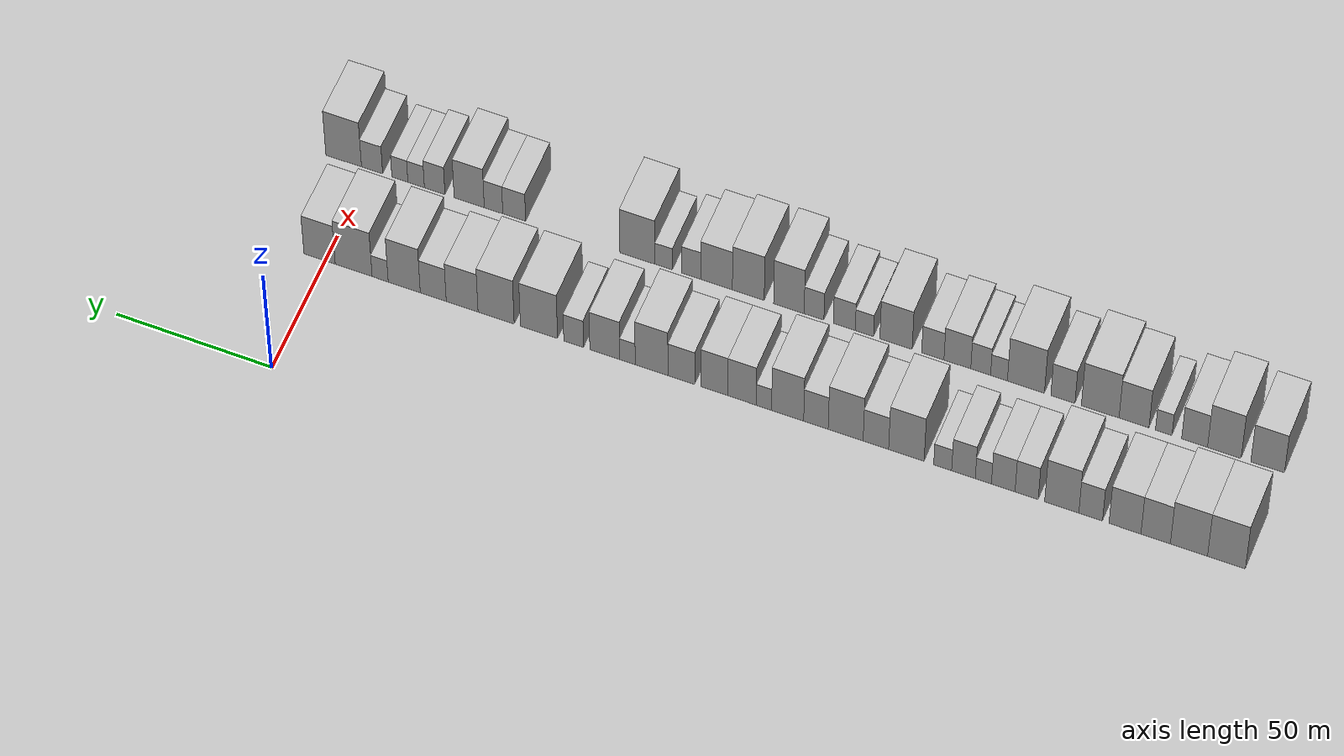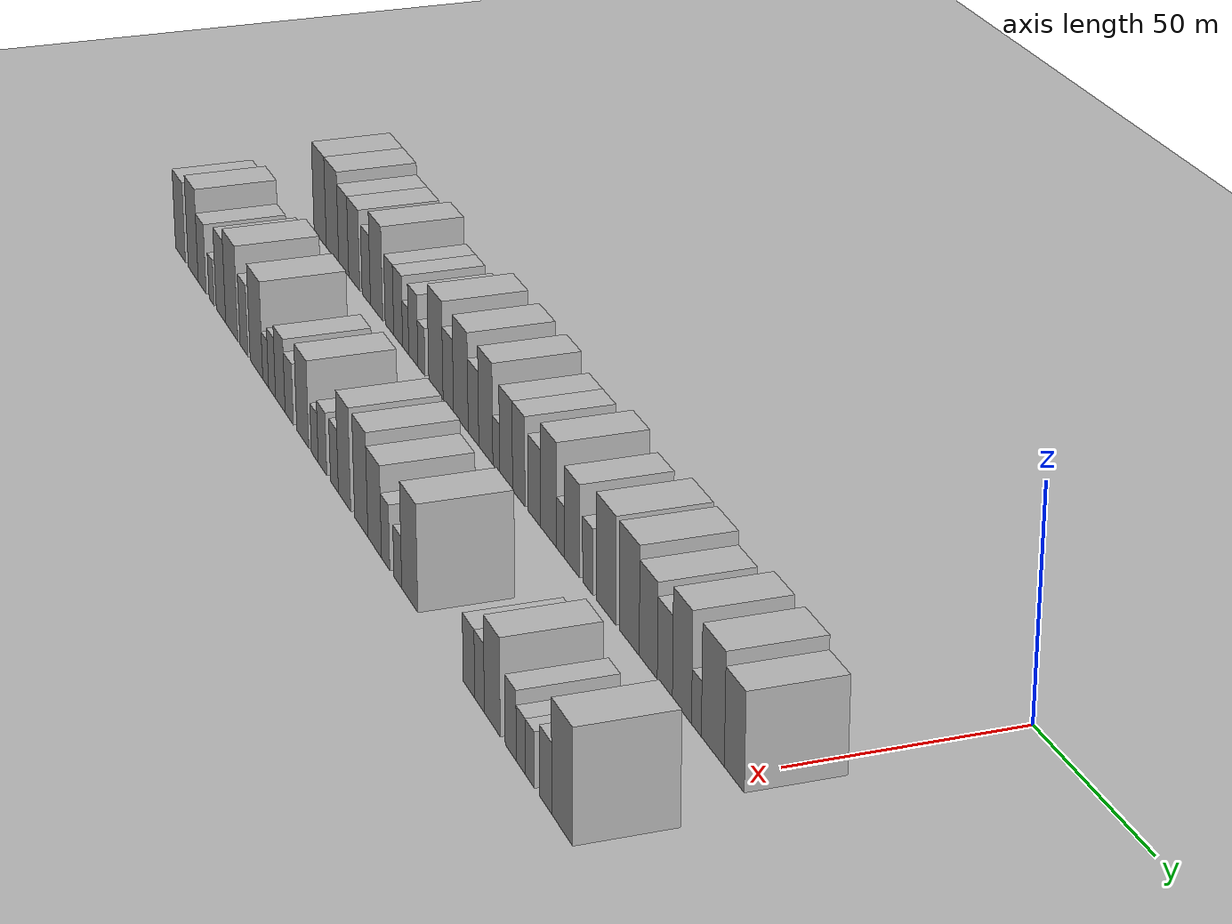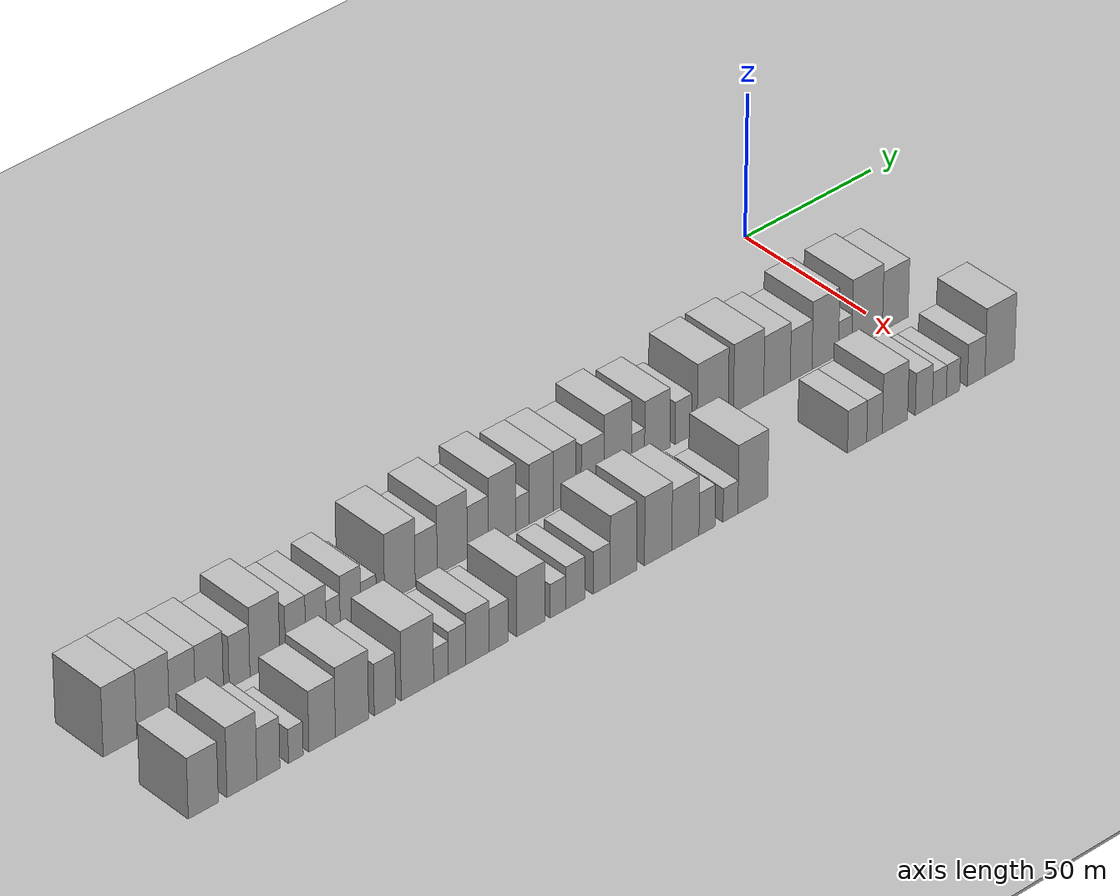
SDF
<sdf version="1.6">
 <world name="default">
  <include><name>ground_plane_1</name><uri>model://HANNAS_ground_plane</uri></include>
  <include>
   <name>ground_plane_2</name>
   <uri>model://HANNAS_ground_plane</uri>
   <pose>100 0 0  0 0 0</pose>
  </include>
  <model name="building_1">
   <static>1</static>
   <pose>50.0000 -284.1968 0 0.000000 0.000000 0.000000</pose>
   <link name="link">
    <pose>0 0 12.00 0 0 0</pose>
    <collision name="collision"><geometry><box><size>20.0000 11.6064 24.0000</size></box></geometry></collision>
    <visual name="visual">
     <cast_shadows>0</cast_shadows>
     <geometry><box><size>20.0000 11.6064 24.0000</size></box></geometry>
     <material>
      <script>
       <uri>model://HANNAS_wall/materials/scripts</uri>
       <uri>model://HANNAS_wall/materials/textures</uri>
       <name>vrc/HANNAS_wall</name>
      </script>
     </material>
    </visual>
   </link>
  </model>
  <model name="building_2">
   <static>1</static>
   <pose>50.0000 -272.6836 0 0.000000 0.000000 0.000000</pose>
   <link name="link">
    <pose>0 0 12.00 0 0 0</pose>
    <collision name="collision"><geometry><box><size>20.0000 11.4199 24.0000</size></box></geometry></collision>
    <visual name="visual">
     <cast_shadows>0</cast_shadows>
     <geometry><box><size>20.0000 11.4199 24.0000</size></box></geometry>
     <material>
      <script>
       <uri>model://HANNAS_wall/materials/scripts</uri>
       <uri>model://HANNAS_wall/materials/textures</uri>
       <name>vrc/HANNAS_wall</name>
      </script>
     </material>
    </visual>
   </link>
  </model>
  <model name="building_3">
   <static>1</static>
   <pose>50.0000 -262.4343 0 0.000000 0.000000 0.000000</pose>
   <link name="link">
    <pose>0 0 10.50 0 0 0</pose>
    <collision name="collision"><geometry><box><size>20.0000 9.0788 21.0000</size></box></geometry></collision>
    <visual name="visual">
     <cast_shadows>0</cast_shadows>
     <geometry><box><size>20.0000 9.0788 21.0000</size></box></geometry>
     <material>
      <script>
       <uri>model://HANNAS_wall/materials/scripts</uri>
       <uri>model://HANNAS_wall/materials/textures</uri>
       <name>vrc/HANNAS_wall</name>
      </script>
     </material>
    </visual>
   </link>
  </model>
  <model name="building_4">
   <static>1</static>
   <pose>50.0000 -252.9656 0 0.000000 0.000000 0.000000</pose>
   <link name="link">
    <pose>0 0 10.50 0 0 0</pose>
    <collision name="collision"><geometry><box><size>20.0000 9.8587 21.0000</size></box></geometry></collision>
    <visual name="visual">
     <cast_shadows>0</cast_shadows>
     <geometry><box><size>20.0000 9.8587 21.0000</size></box></geometry>
     <material>
      <script>
       <uri>model://HANNAS_wall/materials/scripts</uri>
       <uri>model://HANNAS_wall/materials/textures</uri>
       <name>vrc/HANNAS_wall</name>
      </script>
     </material>
    </visual>
   </link>
  </model>
  <model name="building_5">
   <static>1</static>
   <pose>50.0000 -242.3682 0 0.000000 0.000000 0.000000</pose>
   <link name="link">
    <pose>0 0 9.00 0 0 0</pose>
    <collision name="collision"><geometry><box><size>20.0000 7.3362 18.0000</size></box></geometry></collision>
    <visual name="visual">
     <cast_shadows>0</cast_shadows>
     <geometry><box><size>20.0000 7.3362 18.0000</size></box></geometry>
     <material>
      <script>
       <uri>model://HANNAS_wall/materials/scripts</uri>
       <uri>model://HANNAS_wall/materials/textures</uri>
       <name>vrc/HANNAS_wall</name>
      </script>
     </material>
    </visual>
   </link>
  </model>
  <model name="building_6">
   <static>1</static>
   <pose>50.0000 -233.4100 0 0.000000 0.000000 0.000000</pose>
   <link name="link">
    <pose>0 0 12.00 0 0 0</pose>
    <collision name="collision"><geometry><box><size>20.0000 10.5801 24.0000</size></box></geometry></collision>
    <visual name="visual">
     <cast_shadows>0</cast_shadows>
     <geometry><box><size>20.0000 10.5801 24.0000</size></box></geometry>
     <material>
      <script>
       <uri>model://HANNAS_wall/materials/scripts</uri>
       <uri>model://HANNAS_wall/materials/textures</uri>
       <name>vrc/HANNAS_wall</name>
      </script>
     </material>
    </visual>
   </link>
  </model>
  <model name="building_7">
   <static>1</static>
   <pose>50.0000 -222.5193 0 0.000000 0.000000 0.000000</pose>
   <link name="link">
    <pose>0 0 9.00 0 0 0</pose>
    <collision name="collision"><geometry><box><size>20.0000 7.2013 18.0000</size></box></geometry></collision>
    <visual name="visual">
     <cast_shadows>0</cast_shadows>
     <geometry><box><size>20.0000 7.2013 18.0000</size></box></geometry>
     <material>
      <script>
       <uri>model://HANNAS_wall/materials/scripts</uri>
       <uri>model://HANNAS_wall/materials/textures</uri>
       <name>vrc/HANNAS_wall</name>
      </script>
     </material>
    </visual>
   </link>
  </model>
  <model name="building_8">
   <static>1</static>
   <pose>50.0000 -215.2438 0 0.000000 0.000000 0.000000</pose>
   <link name="link">
    <pose>0 0 9.00 0 0 0</pose>
    <collision name="collision"><geometry><box><size>20.0000 7.3496 18.0000</size></box></geometry></collision>
    <visual name="visual">
     <cast_shadows>0</cast_shadows>
     <geometry><box><size>20.0000 7.3496 18.0000</size></box></geometry>
     <material>
      <script>
       <uri>model://HANNAS_wall/materials/scripts</uri>
       <uri>model://HANNAS_wall/materials/textures</uri>
       <name>vrc/HANNAS_wall</name>
      </script>
     </material>
    </visual>
   </link>
  </model>
  <model name="building_9">
   <static>1</static>
   <pose>50.0000 -209.0613 0 0.000000 0.000000 0.000000</pose>
   <link name="link">
    <pose>0 0 6.00 0 0 0</pose>
    <collision name="collision"><geometry><box><size>20.0000 5.0154 12.0000</size></box></geometry></collision>
    <visual name="visual">
     <cast_shadows>0</cast_shadows>
     <geometry><box><size>20.0000 5.0154 12.0000</size></box></geometry>
     <material>
      <script>
       <uri>model://HANNAS_wall/materials/scripts</uri>
       <uri>model://HANNAS_wall/materials/textures</uri>
       <name>vrc/HANNAS_wall</name>
      </script>
     </material>
    </visual>
   </link>
  </model>
  <model name="building_10">
   <static>1</static>
   <pose>50.0000 -202.8698 0 0.000000 0.000000 0.000000</pose>
   <link name="link">
    <pose>0 0 9.00 0 0 0</pose>
    <collision name="collision"><geometry><box><size>20.0000 7.3677 18.0000</size></box></geometry></collision>
    <visual name="visual">
     <cast_shadows>0</cast_shadows>
     <geometry><box><size>20.0000 7.3677 18.0000</size></box></geometry>
     <material>
      <script>
       <uri>model://HANNAS_wall/materials/scripts</uri>
       <uri>model://HANNAS_wall/materials/textures</uri>
       <name>vrc/HANNAS_wall</name>
      </script>
     </material>
    </visual>
   </link>
  </model>
  <model name="building_11">
   <static>1</static>
   <pose>50.0000 -196.3837 0 0.000000 0.000000 0.000000</pose>
   <link name="link">
    <pose>0 0 6.00 0 0 0</pose>
    <collision name="collision"><geometry><box><size>20.0000 5.6044 12.0000</size></box></geometry></collision>
    <visual name="visual">
     <cast_shadows>0</cast_shadows>
     <geometry><box><size>20.0000 5.6044 12.0000</size></box></geometry>
     <material>
      <script>
       <uri>model://HANNAS_wall/materials/scripts</uri>
       <uri>model://HANNAS_wall/materials/textures</uri>
       <name>vrc/HANNAS_wall</name>
      </script>
     </material>
    </visual>
   </link>
  </model>
  <model name="building_12">
   <static>1</static>
   <pose>50.0000 -185.0307 0 0.000000 0.000000 0.000000</pose>
   <link name="link">
    <pose>0 0 12.00 0 0 0</pose>
    <collision name="collision"><geometry><box><size>20.0000 11.1017 24.0000</size></box></geometry></collision>
    <visual name="visual">
     <cast_shadows>0</cast_shadows>
     <geometry><box><size>20.0000 11.1017 24.0000</size></box></geometry>
     <material>
      <script>
       <uri>model://HANNAS_wall/materials/scripts</uri>
       <uri>model://HANNAS_wall/materials/textures</uri>
       <name>vrc/HANNAS_wall</name>
      </script>
     </material>
    </visual>
   </link>
  </model>
  <model name="building_13">
   <static>1</static>
   <pose>50.0000 -175.4873 0 0.000000 0.000000 0.000000</pose>
   <link name="link">
    <pose>0 0 9.00 0 0 0</pose>
    <collision name="collision"><geometry><box><size>20.0000 7.9851 18.0000</size></box></geometry></collision>
    <visual name="visual">
     <cast_shadows>0</cast_shadows>
     <geometry><box><size>20.0000 7.9851 18.0000</size></box></geometry>
     <material>
      <script>
       <uri>model://HANNAS_wall/materials/scripts</uri>
       <uri>model://HANNAS_wall/materials/textures</uri>
       <name>vrc/HANNAS_wall</name>
      </script>
     </material>
    </visual>
   </link>
  </model>
  <model name="building_14">
   <static>1</static>
   <pose>50.0000 -166.0058 0 0.000000 0.000000 0.000000</pose>
   <link name="link">
    <pose>0 0 12.00 0 0 0</pose>
    <collision name="collision"><geometry><box><size>20.0000 10.9779 24.0000</size></box></geometry></collision>
    <visual name="visual">
     <cast_shadows>0</cast_shadows>
     <geometry><box><size>20.0000 10.9779 24.0000</size></box></geometry>
     <material>
      <script>
       <uri>model://HANNAS_wall/materials/scripts</uri>
       <uri>model://HANNAS_wall/materials/textures</uri>
       <name>vrc/HANNAS_wall</name>
      </script>
     </material>
    </visual>
   </link>
  </model>
  <model name="building_15">
   <static>1</static>
   <pose>50.0000 -156.6610 0 0.000000 0.000000 0.000000</pose>
   <link name="link">
    <pose>0 0 9.00 0 0 0</pose>
    <collision name="collision"><geometry><box><size>20.0000 7.7117 18.0000</size></box></geometry></collision>
    <visual name="visual">
     <cast_shadows>0</cast_shadows>
     <geometry><box><size>20.0000 7.7117 18.0000</size></box></geometry>
     <material>
      <script>
       <uri>model://HANNAS_wall/materials/scripts</uri>
       <uri>model://HANNAS_wall/materials/textures</uri>
       <name>vrc/HANNAS_wall</name>
      </script>
     </material>
    </visual>
   </link>
  </model>
  <model name="building_16">
   <static>1</static>
   <pose>50.0000 -147.7419 0 0.000000 0.000000 0.000000</pose>
   <link name="link">
    <pose>0 0 12.00 0 0 0</pose>
    <collision name="collision"><geometry><box><size>20.0000 10.1264 24.0000</size></box></geometry></collision>
    <visual name="visual">
     <cast_shadows>0</cast_shadows>
     <geometry><box><size>20.0000 10.1264 24.0000</size></box></geometry>
     <material>
      <script>
       <uri>model://HANNAS_wall/materials/scripts</uri>
       <uri>model://HANNAS_wall/materials/textures</uri>
       <name>vrc/HANNAS_wall</name>
      </script>
     </material>
    </visual>
   </link>
  </model>
  <model name="building_17">
   <static>1</static>
   <pose>50.0000 -140.2602 0 0.000000 0.000000 0.000000</pose>
   <link name="link">
    <pose>0 0 6.00 0 0 0</pose>
    <collision name="collision"><geometry><box><size>20.0000 4.8370 12.0000</size></box></geometry></collision>
    <visual name="visual">
     <cast_shadows>0</cast_shadows>
     <geometry><box><size>20.0000 4.8370 12.0000</size></box></geometry>
     <material>
      <script>
       <uri>model://HANNAS_wall/materials/scripts</uri>
       <uri>model://HANNAS_wall/materials/textures</uri>
       <name>vrc/HANNAS_wall</name>
      </script>
     </material>
    </visual>
   </link>
  </model>
  <model name="building_18">
   <static>1</static>
   <pose>50.0000 -133.3484 0 0.000000 0.000000 0.000000</pose>
   <link name="link">
    <pose>0 0 10.50 0 0 0</pose>
    <collision name="collision"><geometry><box><size>20.0000 8.9866 21.0000</size></box></geometry></collision>
    <visual name="visual">
     <cast_shadows>0</cast_shadows>
     <geometry><box><size>20.0000 8.9866 21.0000</size></box></geometry>
     <material>
      <script>
       <uri>model://HANNAS_wall/materials/scripts</uri>
       <uri>model://HANNAS_wall/materials/textures</uri>
       <name>vrc/HANNAS_wall</name>
      </script>
     </material>
    </visual>
   </link>
  </model>
  <model name="building_19">
   <static>1</static>
   <pose>50.0000 -124.6117 0 0.000000 0.000000 0.000000</pose>
   <link name="link">
    <pose>0 0 10.50 0 0 0</pose>
    <collision name="collision"><geometry><box><size>20.0000 8.4868 21.0000</size></box></geometry></collision>
    <visual name="visual">
     <cast_shadows>0</cast_shadows>
     <geometry><box><size>20.0000 8.4868 21.0000</size></box></geometry>
     <material>
      <script>
       <uri>model://HANNAS_wall/materials/scripts</uri>
       <uri>model://HANNAS_wall/materials/textures</uri>
       <name>vrc/HANNAS_wall</name>
      </script>
     </material>
    </visual>
   </link>
  </model>
  <model name="building_20">
   <static>1</static>
   <pose>50.0000 -114.1326 0 0.000000 0.000000 0.000000</pose>
   <link name="link">
    <pose>0 0 9.00 0 0 0</pose>
    <collision name="collision"><geometry><box><size>20.0000 8.4714 18.0000</size></box></geometry></collision>
    <visual name="visual">
     <cast_shadows>0</cast_shadows>
     <geometry><box><size>20.0000 8.4714 18.0000</size></box></geometry>
     <material>
      <script>
       <uri>model://HANNAS_wall/materials/scripts</uri>
       <uri>model://HANNAS_wall/materials/textures</uri>
       <name>vrc/HANNAS_wall</name>
      </script>
     </material>
    </visual>
   </link>
  </model>
  <model name="building_21">
   <static>1</static>
   <pose>50.0000 -104.7004 0 0.000000 0.000000 0.000000</pose>
   <link name="link">
    <pose>0 0 12.00 0 0 0</pose>
    <collision name="collision"><geometry><box><size>20.0000 10.3930 24.0000</size></box></geometry></collision>
    <visual name="visual">
     <cast_shadows>0</cast_shadows>
     <geometry><box><size>20.0000 10.3930 24.0000</size></box></geometry>
     <material>
      <script>
       <uri>model://HANNAS_wall/materials/scripts</uri>
       <uri>model://HANNAS_wall/materials/textures</uri>
       <name>vrc/HANNAS_wall</name>
      </script>
     </material>
    </visual>
   </link>
  </model>
  <model name="building_22">
   <static>1</static>
   <pose>50.0000 -97.0555 0 0.000000 0.000000 0.000000</pose>
   <link name="link">
    <pose>0 0 6.00 0 0 0</pose>
    <collision name="collision"><geometry><box><size>20.0000 4.8968 12.0000</size></box></geometry></collision>
    <visual name="visual">
     <cast_shadows>0</cast_shadows>
     <geometry><box><size>20.0000 4.8968 12.0000</size></box></geometry>
     <material>
      <script>
       <uri>model://HANNAS_wall/materials/scripts</uri>
       <uri>model://HANNAS_wall/materials/textures</uri>
       <name>vrc/HANNAS_wall</name>
      </script>
     </material>
    </visual>
   </link>
  </model>
  <model name="building_23">
   <static>1</static>
   <pose>50.0000 -89.8188 0 0.000000 0.000000 0.000000</pose>
   <link name="link">
    <pose>0 0 10.50 0 0 0</pose>
    <collision name="collision"><geometry><box><size>20.0000 9.5765 21.0000</size></box></geometry></collision>
    <visual name="visual">
     <cast_shadows>0</cast_shadows>
     <geometry><box><size>20.0000 9.5765 21.0000</size></box></geometry>
     <material>
      <script>
       <uri>model://HANNAS_wall/materials/scripts</uri>
       <uri>model://HANNAS_wall/materials/textures</uri>
       <name>vrc/HANNAS_wall</name>
      </script>
     </material>
    </visual>
   </link>
  </model>
  <model name="building_24">
   <static>1</static>
   <pose>50.0000 -79.8754 0 0.000000 0.000000 0.000000</pose>
   <link name="link">
    <pose>0 0 7.50 0 0 0</pose>
    <collision name="collision"><geometry><box><size>20.0000 6.3102 15.0000</size></box></geometry></collision>
    <visual name="visual">
     <cast_shadows>0</cast_shadows>
     <geometry><box><size>20.0000 6.3102 15.0000</size></box></geometry>
     <material>
      <script>
       <uri>model://HANNAS_wall/materials/scripts</uri>
       <uri>model://HANNAS_wall/materials/textures</uri>
       <name>vrc/HANNAS_wall</name>
      </script>
     </material>
    </visual>
   </link>
  </model>
  <model name="building_25">
   <static>1</static>
   <pose>50.0000 -68.7800 0 0.000000 0.000000 0.000000</pose>
   <link name="link">
    <pose>0 0 12.00 0 0 0</pose>
    <collision name="collision"><geometry><box><size>20.0000 11.8807 24.0000</size></box></geometry></collision>
    <visual name="visual">
     <cast_shadows>0</cast_shadows>
     <geometry><box><size>20.0000 11.8807 24.0000</size></box></geometry>
     <material>
      <script>
       <uri>model://HANNAS_wall/materials/scripts</uri>
       <uri>model://HANNAS_wall/materials/textures</uri>
       <name>vrc/HANNAS_wall</name>
      </script>
     </material>
    </visual>
   </link>
  </model>
  <model name="building_26">
   <static>1</static>
   <pose>50.0000 -55.0351 0 0.000000 0.000000 0.000000</pose>
   <link name="link">
    <pose>0 0 12.00 0 0 0</pose>
    <collision name="collision"><geometry><box><size>20.0000 11.6092 24.0000</size></box></geometry></collision>
    <visual name="visual">
     <cast_shadows>0</cast_shadows>
     <geometry><box><size>20.0000 11.6092 24.0000</size></box></geometry>
     <material>
      <script>
       <uri>model://HANNAS_wall/materials/scripts</uri>
       <uri>model://HANNAS_wall/materials/textures</uri>
       <name>vrc/HANNAS_wall</name>
      </script>
     </material>
    </visual>
   </link>
  </model>
  <model name="building_27">
   <static>1</static>
   <pose>50.0000 -44.1194 0 0.000000 0.000000 0.000000</pose>
   <link name="link">
    <pose>0 0 10.50 0 0 0</pose>
    <collision name="collision"><geometry><box><size>20.0000 10.2222 21.0000</size></box></geometry></collision>
    <visual name="visual">
     <cast_shadows>0</cast_shadows>
     <geometry><box><size>20.0000 10.2222 21.0000</size></box></geometry>
     <material>
      <script>
       <uri>model://HANNAS_wall/materials/scripts</uri>
       <uri>model://HANNAS_wall/materials/textures</uri>
       <name>vrc/HANNAS_wall</name>
      </script>
     </material>
    </visual>
   </link>
  </model>
  <model name="building_28">
   <static>1</static>
   <pose>50.0000 -34.8238 0 0.000000 0.000000 0.000000</pose>
   <link name="link">
    <pose>0 0 9.00 0 0 0</pose>
    <collision name="collision"><geometry><box><size>20.0000 8.3691 18.0000</size></box></geometry></collision>
    <visual name="visual">
     <cast_shadows>0</cast_shadows>
     <geometry><box><size>20.0000 8.3691 18.0000</size></box></geometry>
     <material>
      <script>
       <uri>model://HANNAS_wall/materials/scripts</uri>
       <uri>model://HANNAS_wall/materials/textures</uri>
       <name>vrc/HANNAS_wall</name>
      </script>
     </material>
    </visual>
   </link>
  </model>
  <model name="building_29">
   <static>1</static>
   <pose>50.0000 -25.4632 0 0.000000 0.000000 0.000000</pose>
   <link name="link">
    <pose>0 0 12.00 0 0 0</pose>
    <collision name="collision"><geometry><box><size>20.0000 10.3520 24.0000</size></box></geometry></collision>
    <visual name="visual">
     <cast_shadows>0</cast_shadows>
     <geometry><box><size>20.0000 10.3520 24.0000</size></box></geometry>
     <material>
      <script>
       <uri>model://HANNAS_wall/materials/scripts</uri>
       <uri>model://HANNAS_wall/materials/textures</uri>
       <name>vrc/HANNAS_wall</name>
      </script>
     </material>
    </visual>
   </link>
  </model>
  <model name="building_30">
   <static>1</static>
   <pose>50.0000 -17.6929 0 0.000000 0.000000 0.000000</pose>
   <link name="link">
    <pose>0 0 6.00 0 0 0</pose>
    <collision name="collision"><geometry><box><size>20.0000 5.1887 12.0000</size></box></geometry></collision>
    <visual name="visual">
     <cast_shadows>0</cast_shadows>
     <geometry><box><size>20.0000 5.1887 12.0000</size></box></geometry>
     <material>
      <script>
       <uri>model://HANNAS_wall/materials/scripts</uri>
       <uri>model://HANNAS_wall/materials/textures</uri>
       <name>vrc/HANNAS_wall</name>
      </script>
     </material>
    </visual>
   </link>
  </model>
  <model name="building_31">
   <static>1</static>
   <pose>50.0000 -9.1304 0 0.000000 0.000000 0.000000</pose>
   <link name="link">
    <pose>0 0 12.00 0 0 0</pose>
    <collision name="collision"><geometry><box><size>20.0000 11.9362 24.0000</size></box></geometry></collision>
    <visual name="visual">
     <cast_shadows>0</cast_shadows>
     <geometry><box><size>20.0000 11.9362 24.0000</size></box></geometry>
     <material>
      <script>
       <uri>model://HANNAS_wall/materials/scripts</uri>
       <uri>model://HANNAS_wall/materials/textures</uri>
       <name>vrc/HANNAS_wall</name>
      </script>
     </material>
    </visual>
   </link>
  </model>
  <model name="building_32">
   <static>1</static>
   <pose>50.0000 1.9001 0 0.000000 0.000000 0.000000</pose>
   <link name="link">
    <pose>0 0 10.50 0 0 0</pose>
    <collision name="collision"><geometry><box><size>20.0000 10.1247 21.0000</size></box></geometry></collision>
    <visual name="visual">
     <cast_shadows>0</cast_shadows>
     <geometry><box><size>20.0000 10.1247 21.0000</size></box></geometry>
     <material>
      <script>
       <uri>model://HANNAS_wall/materials/scripts</uri>
       <uri>model://HANNAS_wall/materials/textures</uri>
       <name>vrc/HANNAS_wall</name>
      </script>
     </material>
    </visual>
   </link>
  </model>
  <model name="building_66">
   <static>1</static>
   <pose>85.0000 -284.8017 0 0.000000 0.000000 0.000000</pose>
   <link name="link">
    <pose>0 0 10.50 0 0 0</pose>
    <collision name="collision"><geometry><box><size>20.0000 10.3967 21.0000</size></box></geometry></collision>
    <visual name="visual">
     <cast_shadows>0</cast_shadows>
     <geometry><box><size>20.0000 10.3967 21.0000</size></box></geometry>
     <material>
      <script>
       <uri>model://HANNAS_wall/materials/scripts</uri>
       <uri>model://HANNAS_wall/materials/textures</uri>
       <name>vrc/HANNAS_wall</name>
      </script>
     </material>
    </visual>
   </link>
  </model>
  <model name="building_67">
   <static>1</static>
   <pose>85.0000 -271.4031 0 0.000000 0.000000 0.000000</pose>
   <link name="link">
    <pose>0 0 12.00 0 0 0</pose>
    <collision name="collision"><geometry><box><size>20.0000 10.4004 24.0000</size></box></geometry></collision>
    <visual name="visual">
     <cast_shadows>0</cast_shadows>
     <geometry><box><size>20.0000 10.4004 24.0000</size></box></geometry>
     <material>
      <script>
       <uri>model://HANNAS_wall/materials/scripts</uri>
       <uri>model://HANNAS_wall/materials/textures</uri>
       <name>vrc/HANNAS_wall</name>
      </script>
     </material>
    </visual>
   </link>
  </model>
  <model name="building_68">
   <static>1</static>
   <pose>85.0000 -262.1874 0 0.000000 0.000000 0.000000</pose>
   <link name="link">
    <pose>0 0 9.00 0 0 0</pose>
    <collision name="collision"><geometry><box><size>20.0000 8.0311 18.0000</size></box></geometry></collision>
    <visual name="visual">
     <cast_shadows>0</cast_shadows>
     <geometry><box><size>20.0000 8.0311 18.0000</size></box></geometry>
     <material>
      <script>
       <uri>model://HANNAS_wall/materials/scripts</uri>
       <uri>model://HANNAS_wall/materials/textures</uri>
       <name>vrc/HANNAS_wall</name>
      </script>
     </material>
    </visual>
   </link>
  </model>
  <model name="building_69">
   <static>1</static>
   <pose>85.0000 -252.5909 0 0.000000 0.000000 0.000000</pose>
   <link name="link">
    <pose>0 0 6.00 0 0 0</pose>
    <collision name="collision"><geometry><box><size>20.0000 5.1620 12.0000</size></box></geometry></collision>
    <visual name="visual">
     <cast_shadows>0</cast_shadows>
     <geometry><box><size>20.0000 5.1620 12.0000</size></box></geometry>
     <material>
      <script>
       <uri>model://HANNAS_wall/materials/scripts</uri>
       <uri>model://HANNAS_wall/materials/textures</uri>
       <name>vrc/HANNAS_wall</name>
      </script>
     </material>
    </visual>
   </link>
  </model>
  <model name="building_70">
   <static>1</static>
   <pose>85.0000 -243.3437 0 0.000000 0.000000 0.000000</pose>
   <link name="link">
    <pose>0 0 10.50 0 0 0</pose>
    <collision name="collision"><geometry><box><size>20.0000 9.3323 21.0000</size></box></geometry></collision>
    <visual name="visual">
     <cast_shadows>0</cast_shadows>
     <geometry><box><size>20.0000 9.3323 21.0000</size></box></geometry>
     <material>
      <script>
       <uri>model://HANNAS_wall/materials/scripts</uri>
       <uri>model://HANNAS_wall/materials/textures</uri>
       <name>vrc/HANNAS_wall</name>
      </script>
     </material>
    </visual>
   </link>
  </model>
  <model name="building_71">
   <static>1</static>
   <pose>85.0000 -232.7959 0 0.000000 0.000000 0.000000</pose>
   <link name="link">
    <pose>0 0 12.00 0 0 0</pose>
    <collision name="collision"><geometry><box><size>20.0000 11.7634 24.0000</size></box></geometry></collision>
    <visual name="visual">
     <cast_shadows>0</cast_shadows>
     <geometry><box><size>20.0000 11.7634 24.0000</size></box></geometry>
     <material>
      <script>
       <uri>model://HANNAS_wall/materials/scripts</uri>
       <uri>model://HANNAS_wall/materials/textures</uri>
       <name>vrc/HANNAS_wall</name>
      </script>
     </material>
    </visual>
   </link>
  </model>
  <model name="building_72">
   <static>1</static>
   <pose>85.0000 -221.1366 0 0.000000 0.000000 0.000000</pose>
   <link name="link">
    <pose>0 0 9.00 0 0 0</pose>
    <collision name="collision"><geometry><box><size>20.0000 7.5551 18.0000</size></box></geometry></collision>
    <visual name="visual">
     <cast_shadows>0</cast_shadows>
     <geometry><box><size>20.0000 7.5551 18.0000</size></box></geometry>
     <material>
      <script>
       <uri>model://HANNAS_wall/materials/scripts</uri>
       <uri>model://HANNAS_wall/materials/textures</uri>
       <name>vrc/HANNAS_wall</name>
      </script>
     </material>
    </visual>
   </link>
  </model>
  <model name="building_73">
   <static>1</static>
   <pose>85.0000 -209.5474 0 0.000000 0.000000 0.000000</pose>
   <link name="link">
    <pose>0 0 12.00 0 0 0</pose>
    <collision name="collision"><geometry><box><size>20.0000 11.6233 24.0000</size></box></geometry></collision>
    <visual name="visual">
     <cast_shadows>0</cast_shadows>
     <geometry><box><size>20.0000 11.6233 24.0000</size></box></geometry>
     <material>
      <script>
       <uri>model://HANNAS_wall/materials/scripts</uri>
       <uri>model://HANNAS_wall/materials/textures</uri>
       <name>vrc/HANNAS_wall</name>
      </script>
     </material>
    </visual>
   </link>
  </model>
  <model name="building_74">
   <static>1</static>
   <pose>85.0000 -201.0938 0 0.000000 0.000000 0.000000</pose>
   <link name="link">
    <pose>0 0 6.00 0 0 0</pose>
    <collision name="collision"><geometry><box><size>20.0000 5.2839 12.0000</size></box></geometry></collision>
    <visual name="visual">
     <cast_shadows>0</cast_shadows>
     <geometry><box><size>20.0000 5.2839 12.0000</size></box></geometry>
     <material>
      <script>
       <uri>model://HANNAS_wall/materials/scripts</uri>
       <uri>model://HANNAS_wall/materials/textures</uri>
       <name>vrc/HANNAS_wall</name>
      </script>
     </material>
    </visual>
   </link>
  </model>
  <model name="building_75">
   <static>1</static>
   <pose>85.0000 -195.3390 0 0.000000 0.000000 0.000000</pose>
   <link name="link">
    <pose>0 0 7.50 0 0 0</pose>
    <collision name="collision"><geometry><box><size>20.0000 6.2255 15.0000</size></box></geometry></collision>
    <visual name="visual">
     <cast_shadows>0</cast_shadows>
     <geometry><box><size>20.0000 6.2255 15.0000</size></box></geometry>
     <material>
      <script>
       <uri>model://HANNAS_wall/materials/scripts</uri>
       <uri>model://HANNAS_wall/materials/textures</uri>
       <name>vrc/HANNAS_wall</name>
      </script>
     </material>
    </visual>
   </link>
  </model>
  <model name="building_76">
   <static>1</static>
   <pose>85.0000 -188.0031 0 0.000000 0.000000 0.000000</pose>
   <link name="link">
    <pose>0 0 9.00 0 0 0</pose>
    <collision name="collision"><geometry><box><size>20.0000 8.4463 18.0000</size></box></geometry></collision>
    <visual name="visual">
     <cast_shadows>0</cast_shadows>
     <geometry><box><size>20.0000 8.4463 18.0000</size></box></geometry>
     <material>
      <script>
       <uri>model://HANNAS_wall/materials/scripts</uri>
       <uri>model://HANNAS_wall/materials/textures</uri>
       <name>vrc/HANNAS_wall</name>
      </script>
     </material>
    </visual>
   </link>
  </model>
  <model name="building_77">
   <static>1</static>
   <pose>85.0000 -180.2585 0 0.000000 0.000000 0.000000</pose>
   <link name="link">
    <pose>0 0 7.50 0 0 0</pose>
    <collision name="collision"><geometry><box><size>20.0000 7.0430 15.0000</size></box></geometry></collision>
    <visual name="visual">
     <cast_shadows>0</cast_shadows>
     <geometry><box><size>20.0000 7.0430 15.0000</size></box></geometry>
     <material>
      <script>
       <uri>model://HANNAS_wall/materials/scripts</uri>
       <uri>model://HANNAS_wall/materials/textures</uri>
       <name>vrc/HANNAS_wall</name>
      </script>
     </material>
    </visual>
   </link>
  </model>
  <model name="building_78">
   <static>1</static>
   <pose>85.0000 -168.6325 0 0.000000 0.000000 0.000000</pose>
   <link name="link">
    <pose>0 0 10.50 0 0 0</pose>
    <collision name="collision"><geometry><box><size>20.0000 10.2088 21.0000</size></box></geometry></collision>
    <visual name="visual">
     <cast_shadows>0</cast_shadows>
     <geometry><box><size>20.0000 10.2088 21.0000</size></box></geometry>
     <material>
      <script>
       <uri>model://HANNAS_wall/materials/scripts</uri>
       <uri>model://HANNAS_wall/materials/textures</uri>
       <name>vrc/HANNAS_wall</name>
      </script>
     </material>
    </visual>
   </link>
  </model>
  <model name="building_79">
   <static>1</static>
   <pose>85.0000 -158.6307 0 0.000000 0.000000 0.000000</pose>
   <link name="link">
    <pose>0 0 6.00 0 0 0</pose>
    <collision name="collision"><geometry><box><size>20.0000 5.7948 12.0000</size></box></geometry></collision>
    <visual name="visual">
     <cast_shadows>0</cast_shadows>
     <geometry><box><size>20.0000 5.7948 12.0000</size></box></geometry>
     <material>
      <script>
       <uri>model://HANNAS_wall/materials/scripts</uri>
       <uri>model://HANNAS_wall/materials/textures</uri>
       <name>vrc/HANNAS_wall</name>
      </script>
     </material>
    </visual>
   </link>
  </model>
  <model name="building_80">
   <static>1</static>
   <pose>85.0000 -152.2555 0 0.000000 0.000000 0.000000</pose>
   <link name="link">
    <pose>0 0 7.50 0 0 0</pose>
    <collision name="collision"><geometry><box><size>20.0000 6.9557 15.0000</size></box></geometry></collision>
    <visual name="visual">
     <cast_shadows>0</cast_shadows>
     <geometry><box><size>20.0000 6.9557 15.0000</size></box></geometry>
     <material>
      <script>
       <uri>model://HANNAS_wall/materials/scripts</uri>
       <uri>model://HANNAS_wall/materials/textures</uri>
       <name>vrc/HANNAS_wall</name>
      </script>
     </material>
    </visual>
   </link>
  </model>
  <model name="building_81">
   <static>1</static>
   <pose>85.0000 -142.6343 0 0.000000 0.000000 0.000000</pose>
   <link name="link">
    <pose>0 0 7.50 0 0 0</pose>
    <collision name="collision"><geometry><box><size>20.0000 6.2866 15.0000</size></box></geometry></collision>
    <visual name="visual">
     <cast_shadows>0</cast_shadows>
     <geometry><box><size>20.0000 6.2866 15.0000</size></box></geometry>
     <material>
      <script>
       <uri>model://HANNAS_wall/materials/scripts</uri>
       <uri>model://HANNAS_wall/materials/textures</uri>
       <name>vrc/HANNAS_wall</name>
      </script>
     </material>
    </visual>
   </link>
  </model>
  <model name="building_82">
   <static>1</static>
   <pose>85.0000 -134.6374 0 0.000000 0.000000 0.000000</pose>
   <link name="link">
    <pose>0 0 12.00 0 0 0</pose>
    <collision name="collision"><geometry><box><size>20.0000 9.7072 24.0000</size></box></geometry></collision>
    <visual name="visual">
     <cast_shadows>0</cast_shadows>
     <geometry><box><size>20.0000 9.7072 24.0000</size></box></geometry>
     <material>
      <script>
       <uri>model://HANNAS_wall/materials/scripts</uri>
       <uri>model://HANNAS_wall/materials/textures</uri>
       <name>vrc/HANNAS_wall</name>
      </script>
     </material>
    </visual>
   </link>
  </model>
  <model name="building_83">
   <static>1</static>
   <pose>85.0000 -121.7059 0 0.000000 0.000000 0.000000</pose>
   <link name="link">
    <pose>0 0 12.00 0 0 0</pose>
    <collision name="collision"><geometry><box><size>20.0000 10.1557 24.0000</size></box></geometry></collision>
    <visual name="visual">
     <cast_shadows>0</cast_shadows>
     <geometry><box><size>20.0000 10.1557 24.0000</size></box></geometry>
     <material>
      <script>
       <uri>model://HANNAS_wall/materials/scripts</uri>
       <uri>model://HANNAS_wall/materials/textures</uri>
       <name>vrc/HANNAS_wall</name>
      </script>
     </material>
    </visual>
   </link>
  </model>
  <model name="building_84">
   <static>1</static>
   <pose>85.0000 -111.5536 0 0.000000 0.000000 0.000000</pose>
   <link name="link">
    <pose>0 0 10.50 0 0 0</pose>
    <collision name="collision"><geometry><box><size>20.0000 10.1488 21.0000</size></box></geometry></collision>
    <visual name="visual">
     <cast_shadows>0</cast_shadows>
     <geometry><box><size>20.0000 10.1488 21.0000</size></box></geometry>
     <material>
      <script>
       <uri>model://HANNAS_wall/materials/scripts</uri>
       <uri>model://HANNAS_wall/materials/textures</uri>
       <name>vrc/HANNAS_wall</name>
      </script>
     </material>
    </visual>
   </link>
  </model>
  <model name="building_85">
   <static>1</static>
   <pose>85.0000 -103.4666 0 0.000000 0.000000 0.000000</pose>
   <link name="link">
    <pose>0 0 7.50 0 0 0</pose>
    <collision name="collision"><geometry><box><size>20.0000 6.0253 15.0000</size></box></geometry></collision>
    <visual name="visual">
     <cast_shadows>0</cast_shadows>
     <geometry><box><size>20.0000 6.0253 15.0000</size></box></geometry>
     <material>
      <script>
       <uri>model://HANNAS_wall/materials/scripts</uri>
       <uri>model://HANNAS_wall/materials/textures</uri>
       <name>vrc/HANNAS_wall</name>
      </script>
     </material>
    </visual>
   </link>
  </model>
  <model name="building_86">
   <static>1</static>
   <pose>85.0000 -94.6556 0 0.000000 0.000000 0.000000</pose>
   <link name="link">
    <pose>0 0 6.00 0 0 0</pose>
    <collision name="collision"><geometry><box><size>20.0000 5.5968 12.0000</size></box></geometry></collision>
    <visual name="visual">
     <cast_shadows>0</cast_shadows>
     <geometry><box><size>20.0000 5.5968 12.0000</size></box></geometry>
     <material>
      <script>
       <uri>model://HANNAS_wall/materials/scripts</uri>
       <uri>model://HANNAS_wall/materials/textures</uri>
       <name>vrc/HANNAS_wall</name>
      </script>
     </material>
    </visual>
   </link>
  </model>
  <model name="building_87">
   <static>1</static>
   <pose>85.0000 -86.2173 0 0.000000 0.000000 0.000000</pose>
   <link name="link">
    <pose>0 0 12.00 0 0 0</pose>
    <collision name="collision"><geometry><box><size>20.0000 11.2799 24.0000</size></box></geometry></collision>
    <visual name="visual">
     <cast_shadows>0</cast_shadows>
     <geometry><box><size>20.0000 11.2799 24.0000</size></box></geometry>
     <material>
      <script>
       <uri>model://HANNAS_wall/materials/scripts</uri>
       <uri>model://HANNAS_wall/materials/textures</uri>
       <name>vrc/HANNAS_wall</name>
      </script>
     </material>
    </visual>
   </link>
  </model>
  <model name="building_88">
   <static>1</static>
   <pose>85.0000 -46.4726 0 0.000000 0.000000 0.000000</pose>
   <link name="link">
    <pose>0 0 7.50 0 0 0</pose>
    <collision name="collision"><geometry><box><size>20.0000 7.4031 15.0000</size></box></geometry></collision>
    <visual name="visual">
     <cast_shadows>0</cast_shadows>
     <geometry><box><size>20.0000 7.4031 15.0000</size></box></geometry>
     <material>
      <script>
       <uri>model://HANNAS_wall/materials/scripts</uri>
       <uri>model://HANNAS_wall/materials/textures</uri>
       <name>vrc/HANNAS_wall</name>
      </script>
     </material>
    </visual>
   </link>
  </model>
  <model name="building_89">
   <static>1</static>
   <pose>85.0000 -39.7674 0 0.000000 0.000000 0.000000</pose>
   <link name="link">
    <pose>0 0 7.50 0 0 0</pose>
    <collision name="collision"><geometry><box><size>20.0000 6.0074 15.0000</size></box></geometry></collision>
    <visual name="visual">
     <cast_shadows>0</cast_shadows>
     <geometry><box><size>20.0000 6.0074 15.0000</size></box></geometry>
     <material>
      <script>
       <uri>model://HANNAS_wall/materials/scripts</uri>
       <uri>model://HANNAS_wall/materials/textures</uri>
       <name>vrc/HANNAS_wall</name>
      </script>
     </material>
    </visual>
   </link>
  </model>
  <model name="building_90">
   <static>1</static>
   <pose>85.0000 -31.8712 0 0.000000 0.000000 0.000000</pose>
   <link name="link">
    <pose>0 0 10.50 0 0 0</pose>
    <collision name="collision"><geometry><box><size>20.0000 9.7850 21.0000</size></box></geometry></collision>
    <visual name="visual">
     <cast_shadows>0</cast_shadows>
     <geometry><box><size>20.0000 9.7850 21.0000</size></box></geometry>
     <material>
      <script>
       <uri>model://HANNAS_wall/materials/scripts</uri>
       <uri>model://HANNAS_wall/materials/textures</uri>
       <name>vrc/HANNAS_wall</name>
      </script>
     </material>
    </visual>
   </link>
  </model>
  <model name="building_91">
   <static>1</static>
   <pose>85.0000 -20.6414 0 0.000000 0.000000 0.000000</pose>
   <link name="link">
    <pose>0 0 7.50 0 0 0</pose>
    <collision name="collision"><geometry><box><size>20.0000 6.6747 15.0000</size></box></geometry></collision>
    <visual name="visual">
     <cast_shadows>0</cast_shadows>
     <geometry><box><size>20.0000 6.6747 15.0000</size></box></geometry>
     <material>
      <script>
       <uri>model://HANNAS_wall/materials/scripts</uri>
       <uri>model://HANNAS_wall/materials/textures</uri>
       <name>vrc/HANNAS_wall</name>
      </script>
     </material>
    </visual>
   </link>
  </model>
  <model name="building_92">
   <static>1</static>
   <pose>85.0000 -14.6078 0 0.000000 0.000000 0.000000</pose>
   <link name="link">
    <pose>0 0 6.00 0 0 0</pose>
    <collision name="collision"><geometry><box><size>20.0000 5.3924 12.0000</size></box></geometry></collision>
    <visual name="visual">
     <cast_shadows>0</cast_shadows>
     <geometry><box><size>20.0000 5.3924 12.0000</size></box></geometry>
     <material>
      <script>
       <uri>model://HANNAS_wall/materials/scripts</uri>
       <uri>model://HANNAS_wall/materials/textures</uri>
       <name>vrc/HANNAS_wall</name>
      </script>
     </material>
    </visual>
   </link>
  </model>
  <model name="building_93">
   <static>1</static>
   <pose>85.0000 -9.3055 0 0.000000 0.000000 0.000000</pose>
   <link name="link">
    <pose>0 0 6.00 0 0 0</pose>
    <collision name="collision"><geometry><box><size>20.0000 5.2124 12.0000</size></box></geometry></collision>
    <visual name="visual">
     <cast_shadows>0</cast_shadows>
     <geometry><box><size>20.0000 5.2124 12.0000</size></box></geometry>
     <material>
      <script>
       <uri>model://HANNAS_wall/materials/scripts</uri>
       <uri>model://HANNAS_wall/materials/textures</uri>
       <name>vrc/HANNAS_wall</name>
      </script>
     </material>
    </visual>
   </link>
  </model>
  <model name="building_94">
   <static>1</static>
   <pose>85.0000 -0.2427 0 0.000000 0.000000 0.000000</pose>
   <link name="link">
    <pose>0 0 7.50 0 0 0</pose>
    <collision name="collision"><geometry><box><size>20.0000 6.9132 15.0000</size></box></geometry></collision>
    <visual name="visual">
     <cast_shadows>0</cast_shadows>
     <geometry><box><size>20.0000 6.9132 15.0000</size></box></geometry>
     <material>
      <script>
       <uri>model://HANNAS_wall/materials/scripts</uri>
       <uri>model://HANNAS_wall/materials/textures</uri>
       <name>vrc/HANNAS_wall</name>
      </script>
     </material>
    </visual>
   </link>
  </model>
  <model name="building_95">
   <static>1</static>
   <pose>85.0000 9.0322 0 0.000000 0.000000 0.000000</pose>
   <link name="link">
    <pose>0 0 12.00 0 0 0</pose>
    <collision name="collision"><geometry><box><size>20.0000 11.6365 24.0000</size></box></geometry></collision>
    <visual name="visual">
     <cast_shadows>0</cast_shadows>
     <geometry><box><size>20.0000 11.6365 24.0000</size></box></geometry>
     <material>
      <script>
       <uri>model://HANNAS_wall/materials/scripts</uri>
       <uri>model://HANNAS_wall/materials/textures</uri>
       <name>vrc/HANNAS_wall</name>
      </script>
     </material>
    </visual>
   </link>
  </model>
 </world>
</sdf>
